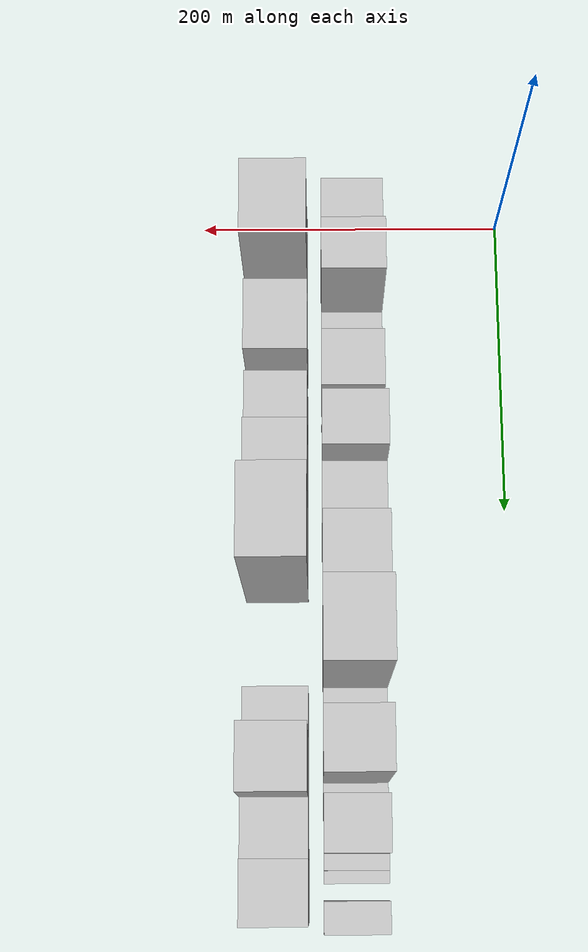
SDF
<sdf version="1.6">
 <world name="default">
  <model name="building_13">
   <static>1</static>
   <pose>100.0000 13.4910 0 0.000000 0.000000 0.000000</pose>
   <link name="link">
    <pose>0 0 33.00 0 0 0</pose>
    <collision name="collision"><geometry><box><size>40.0000 38.0175 66.0000</size></box></geometry></collision>
    <visual name="visual">
     <cast_shadows>0</cast_shadows>
     <geometry><box><size>40.0000 38.0175 66.0000</size></box></geometry>
     <material>
      <script>
       <uri>model://HANNAS_wall/materials/scripts</uri>
       <uri>model://HANNAS_wall/materials/textures</uri>
       <name>vrc/HANNAS_wall</name>
      </script>
     </material>
    </visual>
   </link>
  </model>
  <model name="building_14">
   <static>1</static>
   <pose>100.0000 55.5335 0 0.000000 0.000000 0.000000</pose>
   <link name="link">
    <pose>0 0 51.00 0 0 0</pose>
    <collision name="collision"><geometry><box><size>40.0000 34.0676 102.0000</size></box></geometry></collision>
    <visual name="visual">
     <cast_shadows>0</cast_shadows>
     <geometry><box><size>40.0000 34.0676 102.0000</size></box></geometry>
     <material>
      <script>
       <uri>model://HANNAS_wall/materials/scripts</uri>
       <uri>model://HANNAS_wall/materials/textures</uri>
       <name>vrc/HANNAS_wall</name>
      </script>
     </material>
    </visual>
   </link>
  </model>
  <model name="building_15">
   <static>1</static>
   <pose>100.0000 80.2438 0 0.000000 0.000000 0.000000</pose>
   <link name="link">
    <pose>0 0 15.00 0 0 0</pose>
    <collision name="collision"><geometry><box><size>40.0000 15.3530 30.0000</size></box></geometry></collision>
    <visual name="visual">
     <cast_shadows>0</cast_shadows>
     <geometry><box><size>40.0000 15.3530 30.0000</size></box></geometry>
     <material>
      <script>
       <uri>model://HANNAS_wall/materials/scripts</uri>
       <uri>model://HANNAS_wall/materials/textures</uri>
       <name>vrc/HANNAS_wall</name>
      </script>
     </material>
    </visual>
   </link>
  </model>
  <model name="building_16">
   <static>1</static>
   <pose>100.0000 92.8796 0 0.000000 0.000000 0.000000</pose>
   <link name="link">
    <pose>0 0 12.00 0 0 0</pose>
    <collision name="collision"><geometry><box><size>40.0000 9.9186 24.0000</size></box></geometry></collision>
    <visual name="visual">
     <cast_shadows>0</cast_shadows>
     <geometry><box><size>40.0000 9.9186 24.0000</size></box></geometry>
     <material>
      <script>
       <uri>model://HANNAS_wall/materials/scripts</uri>
       <uri>model://HANNAS_wall/materials/textures</uri>
       <name>vrc/HANNAS_wall</name>
      </script>
     </material>
    </visual>
   </link>
  </model>
  <model name="building_17">
   <static>1</static>
   <pose>100.0000 116.4031 0 0.000000 0.000000 0.000000</pose>
   <link name="link">
    <pose>0 0 33.00 0 0 0</pose>
    <collision name="collision"><geometry><box><size>40.0000 37.1284 66.0000</size></box></geometry></collision>
    <visual name="visual">
     <cast_shadows>0</cast_shadows>
     <geometry><box><size>40.0000 37.1284 66.0000</size></box></geometry>
     <material>
      <script>
       <uri>model://HANNAS_wall/materials/scripts</uri>
       <uri>model://HANNAS_wall/materials/textures</uri>
       <name>vrc/HANNAS_wall</name>
      </script>
     </material>
    </visual>
   </link>
  </model>
  <model name="building_18">
   <static>1</static>
   <pose>100.0000 148.4483 0 0.000000 0.000000 0.000000</pose>
   <link name="link">
    <pose>0 0 7.50 0 0 0</pose>
    <collision name="collision"><geometry><box><size>40.0000 6.9618 15.0000</size></box></geometry></collision>
    <visual name="visual">
     <cast_shadows>0</cast_shadows>
     <geometry><box><size>40.0000 6.9618 15.0000</size></box></geometry>
     <material>
      <script>
       <uri>model://HANNAS_wall/materials/scripts</uri>
       <uri>model://HANNAS_wall/materials/textures</uri>
       <name>vrc/HANNAS_wall</name>
      </script>
     </material>
    </visual>
   </link>
  </model>
  <model name="building_19">
   <static>1</static>
   <pose>100.0000 169.0224 0 0.000000 0.000000 0.000000</pose>
   <link name="link">
    <pose>0 0 54.00 0 0 0</pose>
    <collision name="collision"><geometry><box><size>40.0000 34.1865 108.0000</size></box></geometry></collision>
    <visual name="visual">
     <cast_shadows>0</cast_shadows>
     <geometry><box><size>40.0000 34.1865 108.0000</size></box></geometry>
     <material>
      <script>
       <uri>model://HANNAS_wall/materials/scripts</uri>
       <uri>model://HANNAS_wall/materials/textures</uri>
       <name>vrc/HANNAS_wall</name>
      </script>
     </material>
    </visual>
   </link>
  </model>
  <model name="building_20">
   <static>1</static>
   <pose>100.0000 205.9224 0 0.000000 0.000000 0.000000</pose>
   <link name="link">
    <pose>0 0 36.00 0 0 0</pose>
    <collision name="collision"><geometry><box><size>40.0000 39.6135 72.0000</size></box></geometry></collision>
    <visual name="visual">
     <cast_shadows>0</cast_shadows>
     <geometry><box><size>40.0000 39.6135 72.0000</size></box></geometry>
     <material>
      <script>
       <uri>model://HANNAS_wall/materials/scripts</uri>
       <uri>model://HANNAS_wall/materials/textures</uri>
       <name>vrc/HANNAS_wall</name>
      </script>
     </material>
    </visual>
   </link>
  </model>
  <model name="building_21">
   <static>1</static>
   <pose>100.0000 246.2285 0 0.000000 0.000000 0.000000</pose>
   <link name="link">
    <pose>0 0 55.50 0 0 0</pose>
    <collision name="collision"><geometry><box><size>40.0000 40.9987 111.0000</size></box></geometry></collision>
    <visual name="visual">
     <cast_shadows>0</cast_shadows>
     <geometry><box><size>40.0000 40.9987 111.0000</size></box></geometry>
     <material>
      <script>
       <uri>model://HANNAS_wall/materials/scripts</uri>
       <uri>model://HANNAS_wall/materials/textures</uri>
       <name>vrc/HANNAS_wall</name>
      </script>
     </material>
    </visual>
   </link>
  </model>
  <model name="building_22">
   <static>1</static>
   <pose>100.0000 295.0886 0 0.000000 0.000000 0.000000</pose>
   <link name="link">
    <pose>0 0 73.50 0 0 0</pose>
    <collision name="collision"><geometry><box><size>40.0000 48.7214 147.0000</size></box></geometry></collision>
    <visual name="visual">
     <cast_shadows>0</cast_shadows>
     <geometry><box><size>40.0000 48.7214 147.0000</size></box></geometry>
     <material>
      <script>
       <uri>model://HANNAS_wall/materials/scripts</uri>
       <uri>model://HANNAS_wall/materials/textures</uri>
       <name>vrc/HANNAS_wall</name>
      </script>
     </material>
    </visual>
   </link>
  </model>
  <model name="building_23">
   <static>1</static>
   <pose>100.0000 325.3038 0 0.000000 0.000000 0.000000</pose>
   <link name="link">
    <pose>0 0 13.50 0 0 0</pose>
    <collision name="collision"><geometry><box><size>40.0000 11.7092 27.0000</size></box></geometry></collision>
    <visual name="visual">
     <cast_shadows>0</cast_shadows>
     <geometry><box><size>40.0000 11.7092 27.0000</size></box></geometry>
     <material>
      <script>
       <uri>model://HANNAS_wall/materials/scripts</uri>
       <uri>model://HANNAS_wall/materials/textures</uri>
       <name>vrc/HANNAS_wall</name>
      </script>
     </material>
    </visual>
   </link>
  </model>
  <model name="building_24">
   <static>1</static>
   <pose>100.0000 358.0722 0 0.000000 0.000000 0.000000</pose>
   <link name="link">
    <pose>0 0 60.00 0 0 0</pose>
    <collision name="collision"><geometry><box><size>40.0000 37.8276 120.0000</size></box></geometry></collision>
    <visual name="visual">
     <cast_shadows>0</cast_shadows>
     <geometry><box><size>40.0000 37.8276 120.0000</size></box></geometry>
     <material>
      <script>
       <uri>model://HANNAS_wall/materials/scripts</uri>
       <uri>model://HANNAS_wall/materials/textures</uri>
       <name>vrc/HANNAS_wall</name>
      </script>
     </material>
    </visual>
   </link>
  </model>
  <model name="building_25">
   <static>1</static>
   <pose>100.0000 380.9913 0 0.000000 0.000000 0.000000</pose>
   <link name="link">
    <pose>0 0 9.00 0 0 0</pose>
    <collision name="collision"><geometry><box><size>40.0000 8.0105 18.0000</size></box></geometry></collision>
    <visual name="visual">
     <cast_shadows>0</cast_shadows>
     <geometry><box><size>40.0000 8.0105 18.0000</size></box></geometry>
     <material>
      <script>
       <uri>model://HANNAS_wall/materials/scripts</uri>
       <uri>model://HANNAS_wall/materials/textures</uri>
       <name>vrc/HANNAS_wall</name>
      </script>
     </material>
    </visual>
   </link>
  </model>
  <model name="building_26">
   <static>1</static>
   <pose>100.0000 402.2794 0 0.000000 0.000000 0.000000</pose>
   <link name="link">
    <pose>0 0 30.00 0 0 0</pose>
    <collision name="collision"><geometry><box><size>40.0000 34.5655 60.0000</size></box></geometry></collision>
    <visual name="visual">
     <cast_shadows>0</cast_shadows>
     <geometry><box><size>40.0000 34.5655 60.0000</size></box></geometry>
     <material>
      <script>
       <uri>model://HANNAS_wall/materials/scripts</uri>
       <uri>model://HANNAS_wall/materials/textures</uri>
       <name>vrc/HANNAS_wall</name>
      </script>
     </material>
    </visual>
   </link>
  </model>
  <model name="building_27">
   <static>1</static>
   <pose>100.0000 424.5199 0 0.000000 0.000000 0.000000</pose>
   <link name="link">
    <pose>0 0 12.00 0 0 0</pose>
    <collision name="collision"><geometry><box><size>40.0000 9.9155 24.0000</size></box></geometry></collision>
    <visual name="visual">
     <cast_shadows>0</cast_shadows>
     <geometry><box><size>40.0000 9.9155 24.0000</size></box></geometry>
     <material>
      <script>
       <uri>model://HANNAS_wall/materials/scripts</uri>
       <uri>model://HANNAS_wall/materials/textures</uri>
       <name>vrc/HANNAS_wall</name>
      </script>
     </material>
    </visual>
   </link>
  </model>
  <model name="building_28">
   <static>1</static>
   <pose>100.0000 433.3435 0 0.000000 0.000000 0.000000</pose>
   <link name="link">
    <pose>0 0 9.00 0 0 0</pose>
    <collision name="collision"><geometry><box><size>40.0000 7.7317 18.0000</size></box></geometry></collision>
    <visual name="visual">
     <cast_shadows>0</cast_shadows>
     <geometry><box><size>40.0000 7.7317 18.0000</size></box></geometry>
     <material>
      <script>
       <uri>model://HANNAS_wall/materials/scripts</uri>
       <uri>model://HANNAS_wall/materials/textures</uri>
       <name>vrc/HANNAS_wall</name>
      </script>
     </material>
    </visual>
   </link>
  </model>
  <model name="building_29">
   <static>1</static>
   <pose>100.0000 456.8699 0 0.000000 0.000000 0.000000</pose>
   <link name="link">
    <pose>0 0 16.50 0 0 0</pose>
    <collision name="collision"><geometry><box><size>40.0000 19.3211 33.0000</size></box></geometry></collision>
    <visual name="visual">
     <cast_shadows>0</cast_shadows>
     <geometry><box><size>40.0000 19.3211 33.0000</size></box></geometry>
     <material>
      <script>
       <uri>model://HANNAS_wall/materials/scripts</uri>
       <uri>model://HANNAS_wall/materials/textures</uri>
       <name>vrc/HANNAS_wall</name>
      </script>
     </material>
    </visual>
   </link>
  </model>
  <model name="building_42">
   <static>1</static>
   <pose>149.0000 9.8063 0 0.000000 0.000000 0.000000</pose>
   <link name="link">
    <pose>0 0 13.50 0 0 0</pose>
    <collision name="collision"><geometry><box><size>40.0000 12.5106 27.0000</size></box></geometry></collision>
    <visual name="visual">
     <cast_shadows>0</cast_shadows>
     <geometry><box><size>40.0000 12.5106 27.0000</size></box></geometry>
     <material>
      <script>
       <uri>model://HANNAS_wall/materials/scripts</uri>
       <uri>model://HANNAS_wall/materials/textures</uri>
       <name>vrc/HANNAS_wall</name>
      </script>
     </material>
    </visual>
   </link>
  </model>
  <model name="building_43">
   <static>1</static>
   <pose>149.0000 39.5148 0 0.000000 0.000000 0.000000</pose>
   <link name="link">
    <pose>0 0 67.50 0 0 0</pose>
    <collision name="collision"><geometry><box><size>40.0000 46.9064 135.0000</size></box></geometry></collision>
    <visual name="visual">
     <cast_shadows>0</cast_shadows>
     <geometry><box><size>40.0000 46.9064 135.0000</size></box></geometry>
     <material>
      <script>
       <uri>model://HANNAS_wall/materials/scripts</uri>
       <uri>model://HANNAS_wall/materials/textures</uri>
       <name>vrc/HANNAS_wall</name>
      </script>
     </material>
    </visual>
   </link>
  </model>
  <model name="building_44">
   <static>1</static>
   <pose>149.0000 92.1988 0 0.000000 0.000000 0.000000</pose>
   <link name="link">
    <pose>0 0 39.00 0 0 0</pose>
    <collision name="collision"><geometry><box><size>40.0000 46.4616 78.0000</size></box></geometry></collision>
    <visual name="visual">
     <cast_shadows>0</cast_shadows>
     <geometry><box><size>40.0000 46.4616 78.0000</size></box></geometry>
     <material>
      <script>
       <uri>model://HANNAS_wall/materials/scripts</uri>
       <uri>model://HANNAS_wall/materials/textures</uri>
       <name>vrc/HANNAS_wall</name>
      </script>
     </material>
    </visual>
   </link>
  </model>
  <model name="building_45">
   <static>1</static>
   <pose>149.0000 142.1296 0 0.000000 0.000000 0.000000</pose>
   <link name="link">
    <pose>0 0 31.50 0 0 0</pose>
    <collision name="collision"><geometry><box><size>40.0000 35.4000 63.0000</size></box></geometry></collision>
    <visual name="visual">
     <cast_shadows>0</cast_shadows>
     <geometry><box><size>40.0000 35.4000 63.0000</size></box></geometry>
     <material>
      <script>
       <uri>model://HANNAS_wall/materials/scripts</uri>
       <uri>model://HANNAS_wall/materials/textures</uri>
       <name>vrc/HANNAS_wall</name>
      </script>
     </material>
    </visual>
   </link>
  </model>
  <model name="building_46">
   <static>1</static>
   <pose>149.0000 182.4694 0 0.000000 0.000000 0.000000</pose>
   <link name="link">
    <pose>0 0 39.00 0 0 0</pose>
    <collision name="collision"><geometry><box><size>40.0000 45.2795 78.0000</size></box></geometry></collision>
    <visual name="visual">
     <cast_shadows>0</cast_shadows>
     <geometry><box><size>40.0000 45.2795 78.0000</size></box></geometry>
     <material>
      <script>
       <uri>model://HANNAS_wall/materials/scripts</uri>
       <uri>model://HANNAS_wall/materials/textures</uri>
       <name>vrc/HANNAS_wall</name>
      </script>
     </material>
    </visual>
   </link>
  </model>
  <model name="building_47">
   <static>1</static>
   <pose>149.0000 232.9284 0 0.000000 0.000000 0.000000</pose>
   <link name="link">
    <pose>0 0 70.50 0 0 0</pose>
    <collision name="collision"><geometry><box><size>40.0000 55.6385 141.0000</size></box></geometry></collision>
    <visual name="visual">
     <cast_shadows>0</cast_shadows>
     <geometry><box><size>40.0000 55.6385 141.0000</size></box></geometry>
     <material>
      <script>
       <uri>model://HANNAS_wall/materials/scripts</uri>
       <uri>model://HANNAS_wall/materials/textures</uri>
       <name>vrc/HANNAS_wall</name>
      </script>
     </material>
    </visual>
   </link>
  </model>
  <model name="building_48">
   <static>1</static>
   <pose>149.0000 335.4533 0 0.000000 0.000000 0.000000</pose>
   <link name="link">
    <pose>0 0 27.00 0 0 0</pose>
    <collision name="collision"><geometry><box><size>40.0000 27.8038 54.0000</size></box></geometry></collision>
    <visual name="visual">
     <cast_shadows>0</cast_shadows>
     <geometry><box><size>40.0000 27.8038 54.0000</size></box></geometry>
     <material>
      <script>
       <uri>model://HANNAS_wall/materials/scripts</uri>
       <uri>model://HANNAS_wall/materials/textures</uri>
       <name>vrc/HANNAS_wall</name>
      </script>
     </material>
    </visual>
   </link>
  </model>
  <model name="building_49">
   <static>1</static>
   <pose>149.0000 368.5718 0 0.000000 0.000000 0.000000</pose>
   <link name="link">
    <pose>0 0 63.00 0 0 0</pose>
    <collision name="collision"><geometry><box><size>40.0000 38.4334 126.0000</size></box></geometry></collision>
    <visual name="visual">
     <cast_shadows>0</cast_shadows>
     <geometry><box><size>40.0000 38.4334 126.0000</size></box></geometry>
     <material>
      <script>
       <uri>model://HANNAS_wall/materials/scripts</uri>
       <uri>model://HANNAS_wall/materials/textures</uri>
       <name>vrc/HANNAS_wall</name>
      </script>
     </material>
    </visual>
   </link>
  </model>
  <model name="building_50">
   <static>1</static>
   <pose>149.0000 405.2470 0 0.000000 0.000000 0.000000</pose>
   <link name="link">
    <pose>0 0 34.50 0 0 0</pose>
    <collision name="collision"><geometry><box><size>40.0000 34.9169 69.0000</size></box></geometry></collision>
    <visual name="visual">
     <cast_shadows>0</cast_shadows>
     <geometry><box><size>40.0000 34.9169 69.0000</size></box></geometry>
     <material>
      <script>
       <uri>model://HANNAS_wall/materials/scripts</uri>
       <uri>model://HANNAS_wall/materials/textures</uri>
       <name>vrc/HANNAS_wall</name>
      </script>
     </material>
    </visual>
   </link>
  </model>
  <model name="building_51">
   <static>1</static>
   <pose>149.0000 441.6230 0 0.000000 0.000000 0.000000</pose>
   <link name="link">
    <pose>0 0 37.50 0 0 0</pose>
    <collision name="collision"><geometry><box><size>40.0000 37.8350 75.0000</size></box></geometry></collision>
    <visual name="visual">
     <cast_shadows>0</cast_shadows>
     <geometry><box><size>40.0000 37.8350 75.0000</size></box></geometry>
     <material>
      <script>
       <uri>model://HANNAS_wall/materials/scripts</uri>
       <uri>model://HANNAS_wall/materials/textures</uri>
       <name>vrc/HANNAS_wall</name>
      </script>
     </material>
    </visual>
   </link>
  </model>
 </world>
</sdf>
